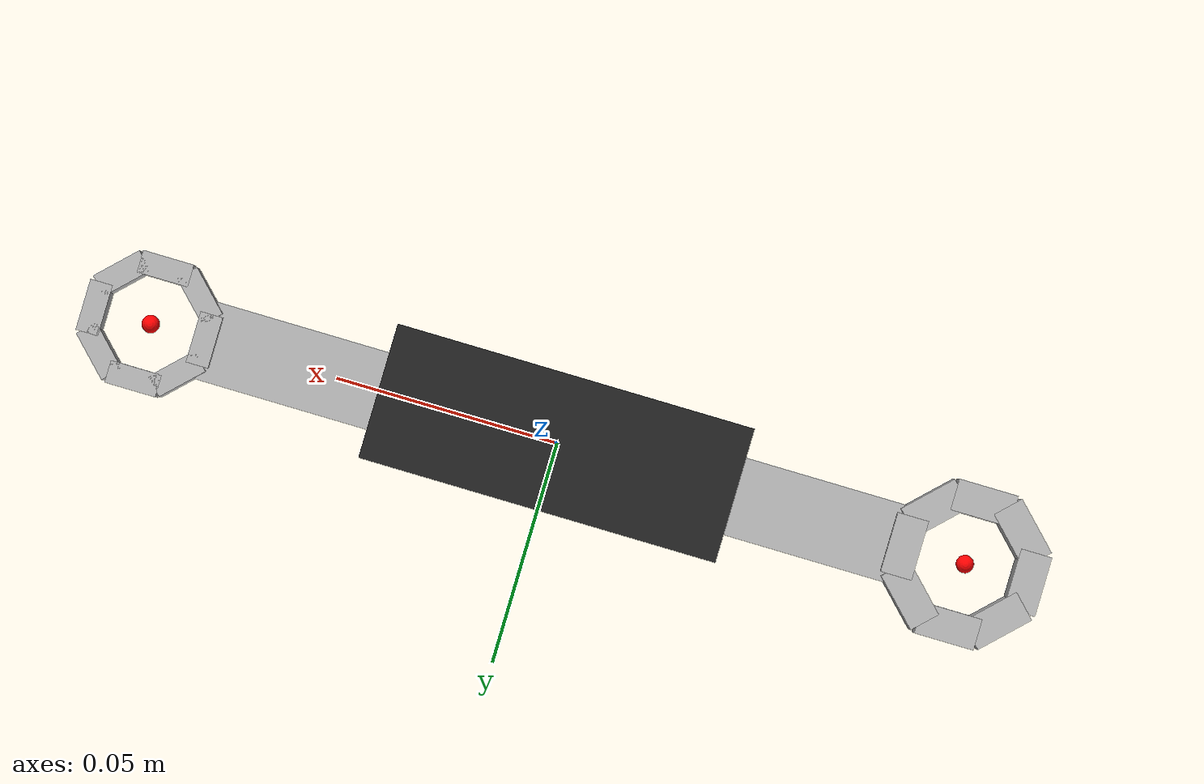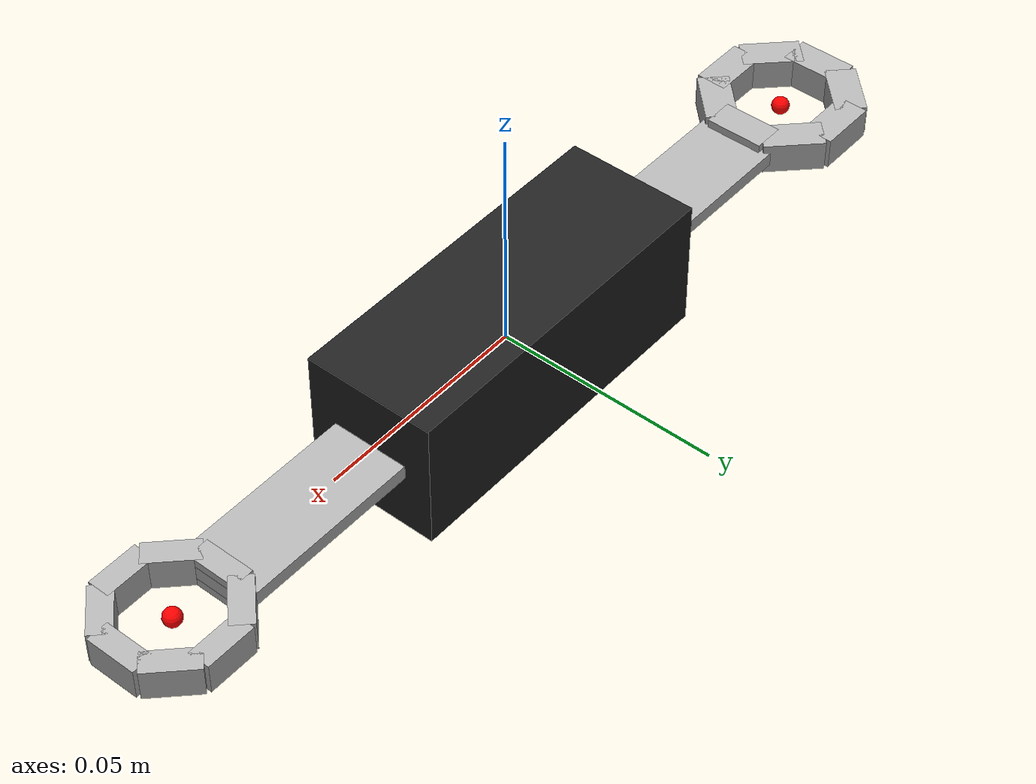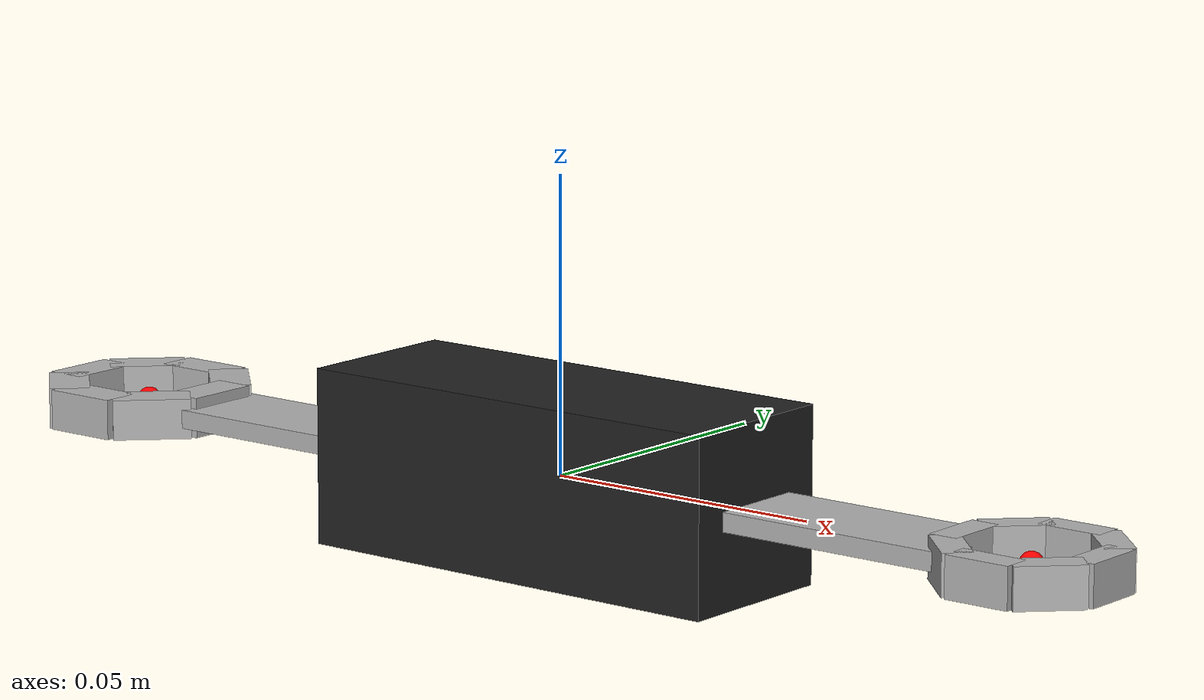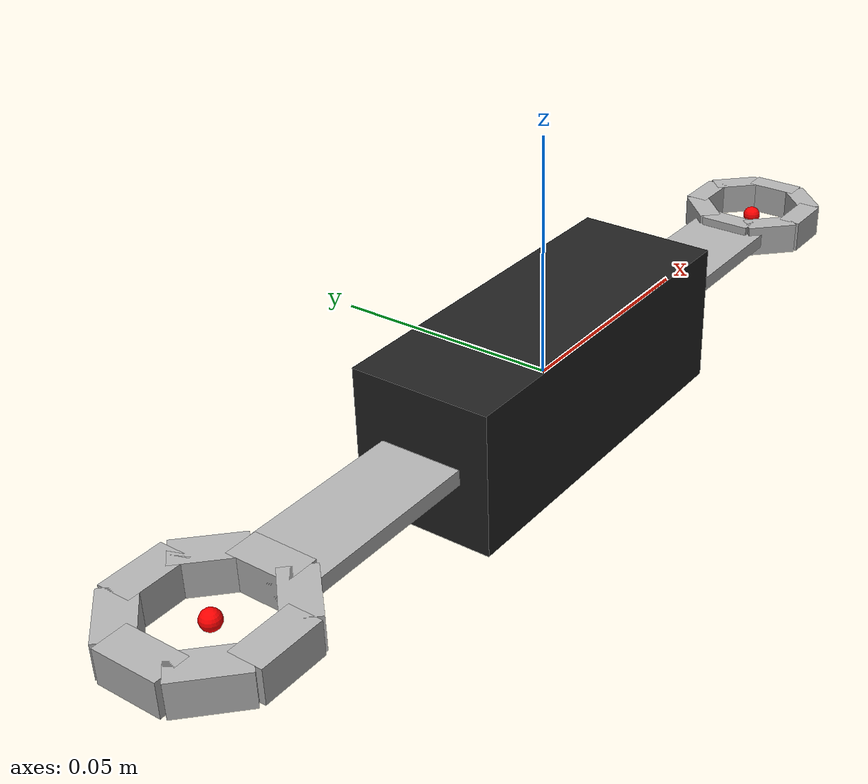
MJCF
<?xml version="1.0" encoding="utf-8"?>
<mujoco model="tool_ratcheting_wrench">
  <compiler angle="radian" coordinate="local"/>
  <option gravity="0 0 -9.81"/>
  <worldbody>
    <body name="tool">
      <joint name="tool_freejoint" type="free" damping="0.0005"/>
      <geom name="tool_handle" type="box" pos="0 0 0" size="0.0825 0.00875 0.0016"
            rgba="0.7 0.7 0.7 1" density="2000" friction="0.95 0.3 0.1"
            solref="0.02 1" solimp="0.998 0.998 0.001"/>
      <!-- Hole 1 (box approximation of hollow cylinder) -->
      <geom name="tool_hole1_hc_0" type="box" pos="-0.079 0 0" quat="1 0 0 0" size="0.0035 0.0066969601 0.0035"
            rgba="0.7 0.7 0.7 1" density="2000" friction="0.95 0.3 0.1"
            solref="0.02 1" solimp="0.998 0.998 0.001"/>
      <geom name="tool_hole1_hc_1" type="box" pos="-0.083100505 0.0098994949 0" quat="0.92387953 0 0 0.38268343" size="0.0035 0.0066969601 0.0035"
            rgba="0.7 0.7 0.7 1" density="2000" friction="0.95 0.3 0.1"
            solref="0.02 1" solimp="0.998 0.998 0.001"/>
      <geom name="tool_hole1_hc_2" type="box" pos="-0.093 0.014 0" quat="0.70710678 0 0 0.70710678" size="0.0035 0.0066969601 0.0035"
            rgba="0.7 0.7 0.7 1" density="2000" friction="0.95 0.3 0.1"
            solref="0.02 1" solimp="0.998 0.998 0.001"/>
      <geom name="tool_hole1_hc_3" type="box" pos="-0.10289949 0.0098994949 0" quat="0.38268343 0 0 0.92387953" size="0.0035 0.0066969601 0.0035"
            rgba="0.7 0.7 0.7 1" density="2000" friction="0.95 0.3 0.1"
            solref="0.02 1" solimp="0.998 0.998 0.001"/>
      <geom name="tool_hole1_hc_4" type="box" pos="-0.107 1.7145055e-18 0" quat="6.123234e-17 0 0 1" size="0.0035 0.0066969601 0.0035"
            rgba="0.7 0.7 0.7 1" density="2000" friction="0.95 0.3 0.1"
            solref="0.02 1" solimp="0.998 0.998 0.001"/>
      <geom name="tool_hole1_hc_5" type="box" pos="-0.10289949 -0.0098994949 0" quat="-0.38268343 0 0 0.92387953" size="0.0035 0.0066969601 0.0035"
            rgba="0.7 0.7 0.7 1" density="2000" friction="0.95 0.3 0.1"
            solref="0.02 1" solimp="0.998 0.998 0.001"/>
      <geom name="tool_hole1_hc_6" type="box" pos="-0.093 -0.014 0" quat="-0.70710678 0 0 0.70710678" size="0.0035 0.0066969601 0.0035"
            rgba="0.7 0.7 0.7 1" density="2000" friction="0.95 0.3 0.1"
            solref="0.02 1" solimp="0.998 0.998 0.001"/>
      <geom name="tool_hole1_hc_7" type="box" pos="-0.083100505 -0.0098994949 0" quat="-0.92387953 0 0 0.38268343" size="0.0035 0.0066969601 0.0035"
            rgba="0.7 0.7 0.7 1" density="2000" friction="0.95 0.3 0.1"
            solref="0.02 1" solimp="0.998 0.998 0.001"/>
      <!-- Hole 2 (box approximation of hollow cylinder) -->
      <geom name="tool_hole2_hc_0" type="box" pos="0.105 0 0" quat="1 0 0 0" size="0.0025 0.0057402515 0.0035"
            rgba="0.7 0.7 0.7 1" density="2000" friction="0.95 0.3 0.1"
            solref="0.02 1" solimp="0.998 0.998 0.001"/>
      <geom name="tool_hole2_hc_1" type="box" pos="0.10133883 0.0088388348 0" quat="0.92387953 0 0 0.38268343" size="0.0025 0.0057402515 0.0035"
            rgba="0.7 0.7 0.7 1" density="2000" friction="0.95 0.3 0.1"
            solref="0.02 1" solimp="0.998 0.998 0.001"/>
      <geom name="tool_hole2_hc_2" type="box" pos="0.0925 0.0125 0" quat="0.70710678 0 0 0.70710678" size="0.0025 0.0057402515 0.0035"
            rgba="0.7 0.7 0.7 1" density="2000" friction="0.95 0.3 0.1"
            solref="0.02 1" solimp="0.998 0.998 0.001"/>
      <geom name="tool_hole2_hc_3" type="box" pos="0.083661165 0.0088388348 0" quat="0.38268343 0 0 0.92387953" size="0.0025 0.0057402515 0.0035"
            rgba="0.7 0.7 0.7 1" density="2000" friction="0.95 0.3 0.1"
            solref="0.02 1" solimp="0.998 0.998 0.001"/>
      <geom name="tool_hole2_hc_4" type="box" pos="0.08 1.5308085e-18 0" quat="6.123234e-17 0 0 1" size="0.0025 0.0057402515 0.0035"
            rgba="0.7 0.7 0.7 1" density="2000" friction="0.95 0.3 0.1"
            solref="0.02 1" solimp="0.998 0.998 0.001"/>
      <geom name="tool_hole2_hc_5" type="box" pos="0.083661165 -0.0088388348 0" quat="-0.38268343 0 0 0.92387953" size="0.0025 0.0057402515 0.0035"
            rgba="0.7 0.7 0.7 1" density="2000" friction="0.95 0.3 0.1"
            solref="0.02 1" solimp="0.998 0.998 0.001"/>
      <geom name="tool_hole2_hc_6" type="box" pos="0.0925 -0.0125 0" quat="-0.70710678 0 0 0.70710678" size="0.0025 0.0057402515 0.0035"
            rgba="0.7 0.7 0.7 1" density="2000" friction="0.95 0.3 0.1"
            solref="0.02 1" solimp="0.998 0.998 0.001"/>
      <geom name="tool_hole2_hc_7" type="box" pos="0.10133883 -0.0088388348 0" quat="-0.92387953 0 0 0.38268343" size="0.0025 0.0057402515 0.0035"
            rgba="0.7 0.7 0.7 1" density="2000" friction="0.95 0.3 0.1"
            solref="0.02 1" solimp="0.998 0.998 0.001"/>
      <site name="tool_hole1_center" pos="-0.093 0 0" size="0.002" rgba="1 0 0 1" type="sphere"/>
      <site name="tool_hole2_center" pos="0.0925 0 0" size="0.002" rgba="1 0 0 1" type="sphere"/>
      <geom name="tool_grip" type="box" pos="0 0 0" quat="0.70710678 0 0.70710678 0"
            size="0.015 0.015 0.04" rgba="0.13 0.13 0.13 1"
            density="2000" friction="1 0.005 0.0001" solref="0.02 1" solimp="0.998 0.998 0.001"/>
    </body>
  </worldbody>
</mujoco>
